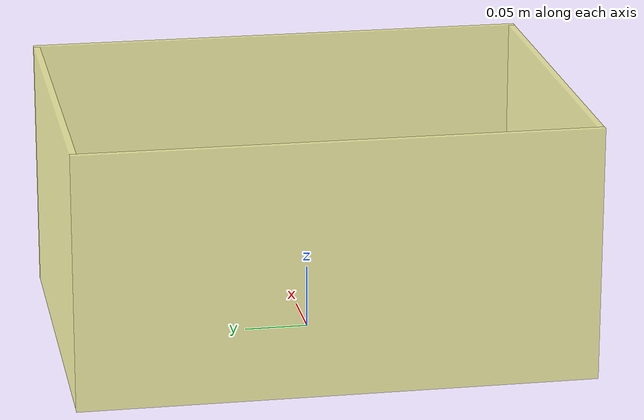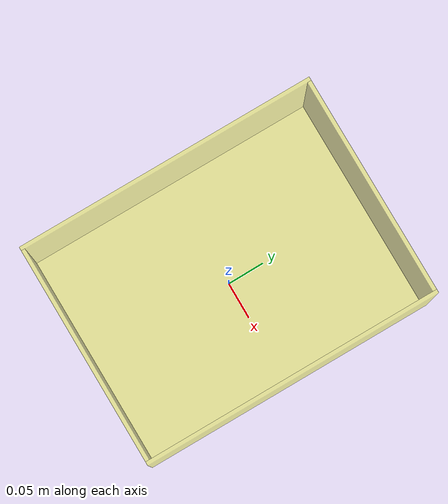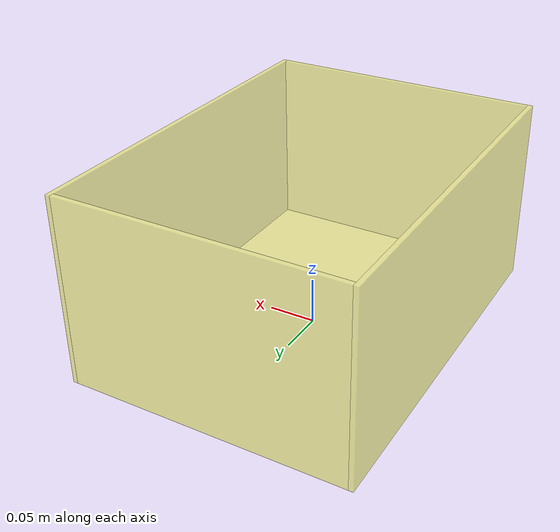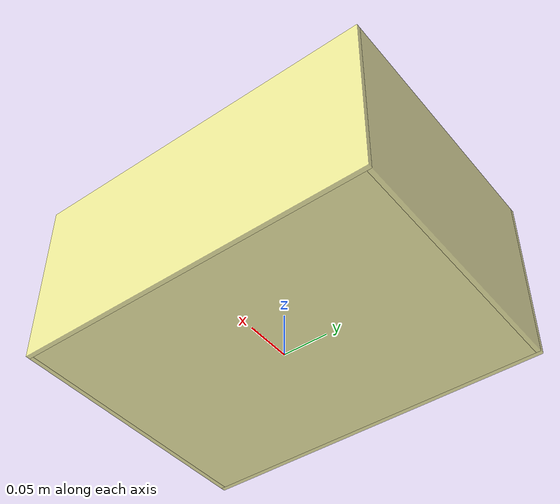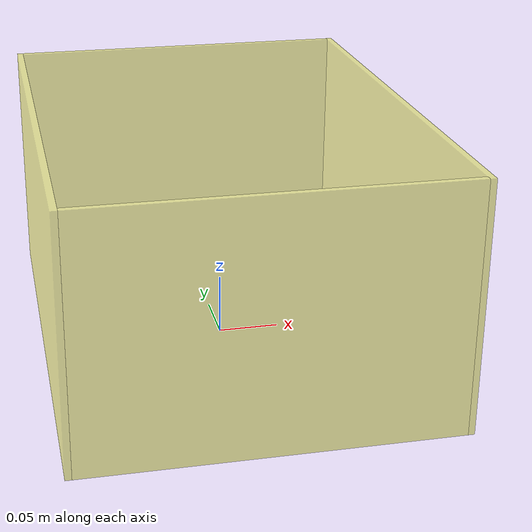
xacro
<?xml version="1.0" ?>
<!-- Receiving container of ode_grpour_sim -->
<robot name="container1" xmlns:xacro="http://www.ros.org/wiki/xacro">
  <xacro:arg name="Thickness"    default="0.005" />
  <xacro:arg name="SizeX"        default="0.3" />
  <xacro:arg name="SizeY"        default="0.4" />
  <xacro:arg name="SizeZ"        default="0.2" />

  <xacro:macro name="box_geom" params="xyz rpy size">
    <origin xyz="${xyz}" rpy="${rpy}"/>
    <geometry><box size="${size}"/></geometry>
  </xacro:macro>

  <xacro:macro name="add_box" params="xyz rpy size">
    <visual>
      <xacro:box_geom xyz="${xyz}" rpy="${rpy}" size="${size}"/>
      <material name="container_material"/>
    </visual>
    <collision>
      <xacro:box_geom xyz="${xyz}" rpy="${rpy}" size="${size}"/>
    </collision>
  </xacro:macro>

  <material name="container_material">
    <color rgba="1 1 0.5 0.7"/>
  </material>

  <link name="base_link">
    <contact>
      <rolling_friction value="0.1"/>
      <spinning_friction value="0.1"/>
    </contact>
    <inertial>
      <origin rpy="0 0 0" xyz="0 0 0"/>
      <mass value="0.1"/>
      <inertia ixx="1" ixy="0" ixz="0" iyy="1" iyz="0" izz="1"/>
    </inertial>

    <xacro:property name="sizex"  value="$(arg SizeX)" />
    <xacro:property name="sizey"  value="$(arg SizeY)" />
    <xacro:property name="sizez"  value="$(arg SizeZ)" />
    <xacro:property name="thickness" value="$(arg Thickness)" />
    <xacro:property name="bottom_z" value="0.0" />
    <xacro:property name="M_SQRT2" value="${sqrt(2.0)}" />

    <!--Main body of the container:-->
    <xacro:add_box rpy="0 0 0" xyz="${0.0} ${0.0} ${0.5*thickness+bottom_z}"
                   size="${sizex-2.0*thickness} ${sizey-2.0*thickness} ${thickness}" />
    <xacro:add_box rpy="0 0 0" xyz="${0.5*sizex-0.5*thickness} ${0.0} ${0.5*sizez+bottom_z}"
                   size="${thickness} ${sizey} ${sizez}" />
    <xacro:add_box rpy="0 0 0" xyz="${-0.5*sizex+0.5*thickness} ${0.0} ${0.5*sizez+bottom_z}"
                   size="${thickness} ${sizey} ${sizez}" />
    <xacro:add_box rpy="0 0 0" xyz="${0.0} ${0.5*sizey-0.5*thickness} ${0.5*sizez+bottom_z}"
                   size="${sizex-2.0*thickness} ${thickness} ${sizez}" />
    <xacro:add_box rpy="0 0 0" xyz="${0.0} ${-0.5*sizey+0.5*thickness} ${0.5*sizez+bottom_z}"
                   size="${sizex-2.0*thickness} ${thickness} ${sizez}" />

  </link>
</robot>
